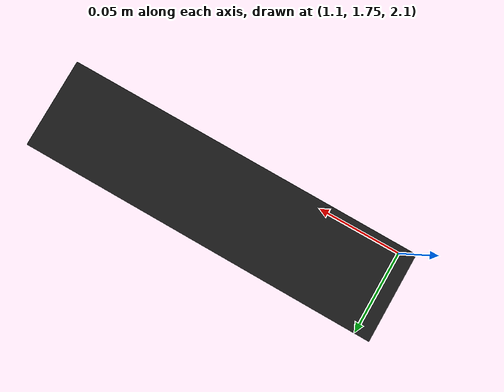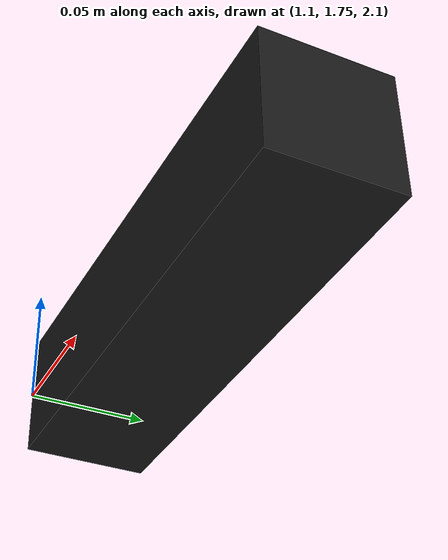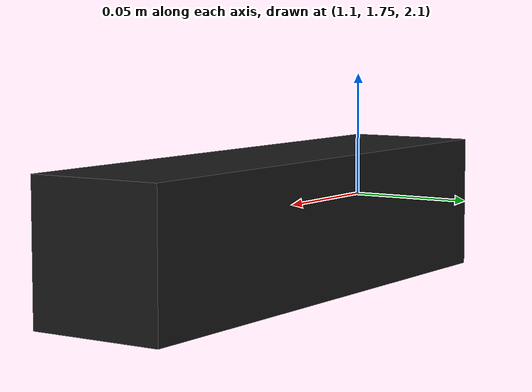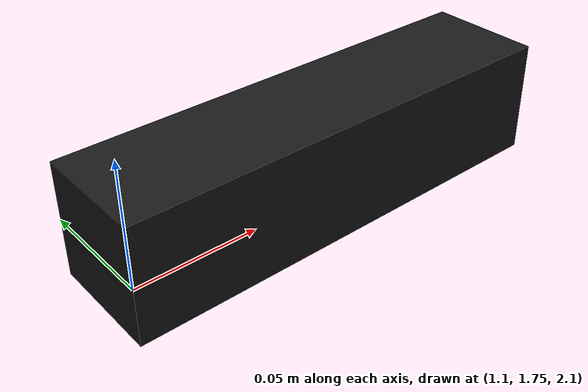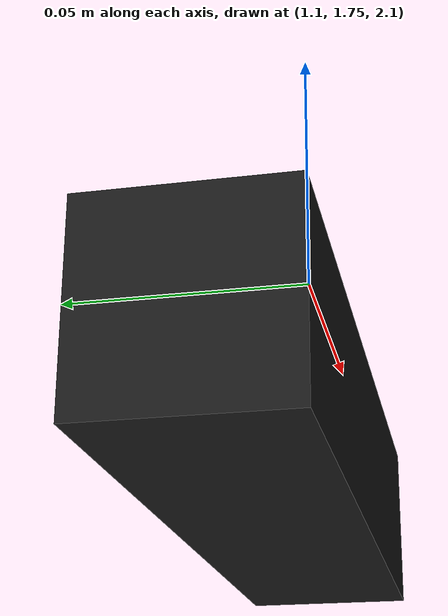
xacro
<?xml version="1.0"?>
<robot name="logical_camera" xmlns:xacro="http://www.ros.org/wiki/xacro">
  <xacro:arg name="prefix" default="logical_camera1_"/>

  <!-- URDF -->
  <xacro:include filename="$(find hrwros_support)/urdf/logical_camera/logical_camera.urdf.xacro"/>
  <xacro:logical_camera_urdf prefix="$(arg prefix)"/>

</robot>

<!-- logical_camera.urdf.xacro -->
<robot name="logical_camera_urdf" xmlns:xacro="http://www.ros.org/wiki/xacro">
  <xacro:macro name="logical_camera_urdf" params="prefix">
    <xacro:property name="length" value="0.2"/>
    <xacro:property name="width" value="0.050"/>
    <xacro:property name="height" value="0.050"/>

    <!-- link list -->
    <link name="${prefix}world_interface"/>
    <link name="${prefix}base_link">
      <visual>
        <origin xyz="0 0 ${height / 2}" rpy="0 0 0" />
        <geometry>
          <box size="${width} ${length} ${height}" />
        </geometry>
        <material name="dark_grey">
          <color rgba="0.1 0.1 0.1 1.0"/>
        </material>
      </visual>
      <collision>
        <origin xyz="0 0 ${height / 2}" rpy="0 0 0" />
        <geometry>
          <box size="${width} ${length} ${height}" />
        </geometry>
        <material name="dark_grey"/>
      </collision>
      <inertial>
        <origin xyz="0 0 0" rpy="0 0 0" />
        <inertia ixx="0.1" ixy="0" ixz="0"
                 iyy="0.1" iyz="0"
                 izz="0.1" />
        <mass value="1" />
      </inertial>
    </link>

    <!-- joint list -->
    <joint name="${prefix}joint" type="fixed">
      <parent link="${prefix}world_interface" />
      <child link="${prefix}base_link" />
      <origin xyz="1.2 1.8 2.1" rpy="0 ${radians(90)} -${radians(90)}" />
    </joint>
  </xacro:macro>
</robot>
